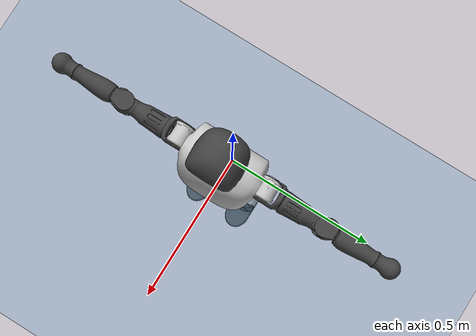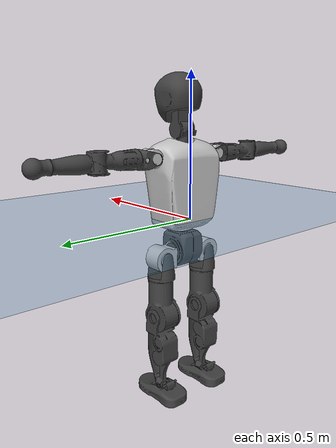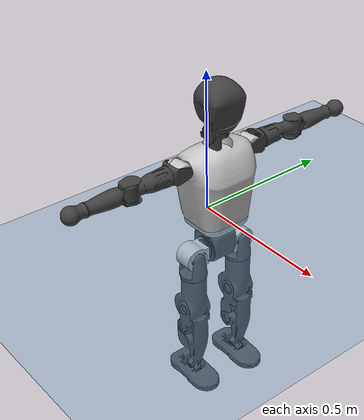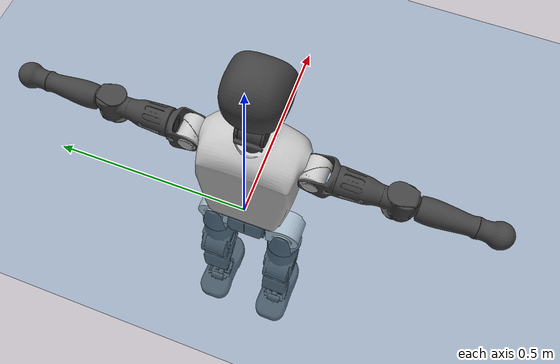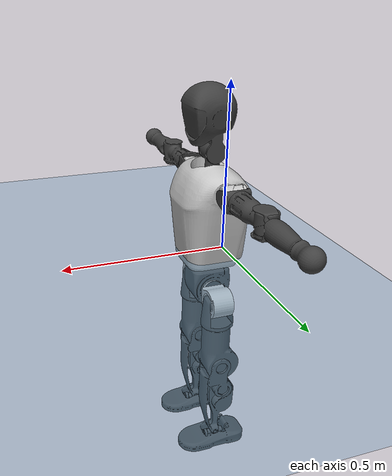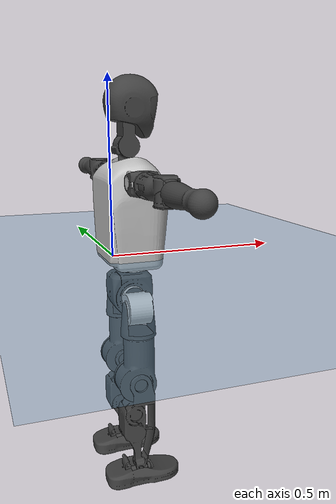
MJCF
<mujoco model="T1">
  <compiler angle="radian" assetdir="assets" balanceinertia="true" inertiafromgeom="false"/>

  <option timestep="0.005" density="1.2" viscosity="2e-05"/>

  <size nkey="1"/>

  <visual>
    <quality shadowsize="8192"/>
    <map shadowclip="0.5"/>
  </visual>

  <default>
    <default class="/">
      <joint armature="0.01" damping="0.01" frictionloss="0.1"/>
      <geom contype="0" conaffinity="0" group="1" solref="-1000 -80"/>
      <site size="0.01 0.005 0.005" group="5"/>
      <general forcelimited="true" biastype="affine" gainprm="25" biasprm="0 -25 -0.6"/>
      <default class="t1">
        <geom rgba="0.25 0.25 0.25 1"/>
        <default class="visual">
          <geom type="mesh" group="2"/>
        </default>
        <default class="collision">
          <geom group="3"/>
        </default>
        <default class="foot">
          <geom size="0.1115 0.05 0.015" type="box" condim="6" group="4" priority="1" solimp="0.015 1 0.015"/>
        </default>
        <default class="reward_collision_sphere">
          <geom group="5" rgba="1 0 0 1"/>
        </default>
      </default>
    </default>
  </default>

  <asset>
    <texture type="skybox" colorspace="auto" name="//unnamed_texture_0" builtin="gradient" rgb1="0.95 0.95 0.95" rgb2="0.95 0.95 0.95" width="100" height="600"/>
    <texture type="2d" colorspace="auto" name="texplane" builtin="checker" rgb1="0.345 0.575 0.748" rgb2="0.345 0.575 0.748" markrgb="1 1 1" width="512" height="512"/>
    <material name="MatPlane" class="/" texture="texplane" texuniform="true" texrepeat="2 2" specular="0.9"/>
    <mesh name="Trunk" class="/" file="Trunk.stl"/>
    <mesh name="H1" class="/" file="H1.stl"/>
    <mesh name="H2" class="/" file="H2.stl"/>
    <mesh name="AL1" class="/" file="AL1.stl"/>
    <mesh name="AL2" class="/" file="AL2.stl"/>
    <mesh name="AL3" class="/" file="AL3.stl"/>
    <mesh name="left_hand_link" class="/" file="left_hand_link.stl"/>
    <mesh name="AR1" class="/" file="AR1.stl"/>
    <mesh name="AR2" class="/" file="AR2.stl"/>
    <mesh name="AR3" class="/" file="AR3.stl"/>
    <mesh name="right_hand_link" class="/" file="right_hand_link.stl"/>
    <mesh name="Waist" class="/" file="Waist.stl"/>
    <mesh name="Hip_Pitch_Left" class="/" file="Hip_Pitch_Left.stl"/>
    <mesh name="Hip_Roll_Left" class="/" file="Hip_Roll_Left.stl"/>
    <mesh name="Hip_Yaw_Left" class="/" file="Hip_Yaw_Left.stl"/>
    <mesh name="Shank_Left" class="/" file="Shank_Left.stl"/>
    <mesh name="Ankle_Cross_Left" class="/" file="Ankle_Cross_Left.stl"/>
    <mesh name="left_foot_link" class="/" file="left_foot_link.stl"/>
    <mesh name="Hip_Pitch_Right" class="/" file="Hip_Pitch_Right.stl"/>
    <mesh name="Hip_Roll_Right" class="/" file="Hip_Roll_Right.stl"/>
    <mesh name="Hip_Yaw_Right" class="/" file="Hip_Yaw_Right.stl"/>
    <mesh name="Shank_Right" class="/" file="Shank_Right.stl"/>
    <mesh name="Ankle_Cross_Right" class="/" file="Ankle_Cross_Right.stl"/>
    <mesh name="right_foot_link" class="/" file="right_foot_link.stl"/>
  </asset>

  <worldbody>
    <geom name="floor" class="/" size="100 100 0.125" type="plane" group="0" material="MatPlane"/>
    <light name="toplight_shadow" class="/" pos="0 0 5" dir="0.0990148 0.0990148 -0.990148" type="directional" ambient="0.04 0.04 0.04" diffuse="0.55 0.55 0.55" specular="0.12 0.12 0.12"/>
    <light name="toplight_fill" class="/" pos="0 0 5" dir="0.0990148 0.0990148 -0.990148" type="directional" castshadow="false" ambient="0.04 0.04 0.04" diffuse="0.3 0.3 0.3" specular="0.08 0.08 0.08"/>
    <body name="trunk" childclass="t1" pos="-0.000504891 -0.00262069 0.00138968" quat="1 0.000257137 0.000410915 -0.000680698">
      <inertial pos="0.0401841 -0.000706522 0.106467" quat="0.999961 -0.00363912 -0.00722728 -0.003464" mass="7.80476" diaginertia="0.0192955 0.04994 0.057412"/>
      <joint name="//unnamed_joint_0" type="free" armature="0" damping="0" frictionloss="0"/>
      <geom name="//unnamed_geom_1" class="visual" rgba="0.76 0.76 0.76 1" mesh="Trunk"/>
      <geom name="//unnamed_geom_2" class="collision" size="0.0662495 0.0883327 0.132499" pos="0.0440018 0 0.120639" type="box"/>
      <geom name="//unnamed_geom_3" class="reward_collision_sphere" size="0.101583" pos="0.0440018 0 0.100532"/>
      <geom name="//unnamed_geom_4" class="reward_collision_sphere" size="0.0132499" pos="0.0440018 0.0774601 0"/>
      <geom name="//unnamed_geom_5" class="reward_collision_sphere" size="0.0132499" pos="0.0440018 -0.0774601 0"/>
      <geom name="//unnamed_geom_6" class="reward_collision_sphere" size="0.0132499" pos="0.0440018 0.0975086 0.180958"/>
      <geom name="//unnamed_geom_7" class="reward_collision_sphere" size="0.0132499" pos="0.0440018 -0.0975086 0.180958"/>
      <site name="imu" pos="-0.00978619 -0.0138043 0.0016842" size="0.00883327"/>
      <camera name="track" pos="0 -1.82259 0" quat="0.707107 0.707107 0 0" mode="trackcom"/>
      <camera name="ego_camera" pos="0.0894704 0 0.422236" quat="-0.5 -0.5 0.5 0.5"/>
      <body name="H1" pos="0.0454714 0.00083408 0.244926" quat="1 -9.71861e-05 -0.000368631 -0.000449691">
        <inertial pos="-0.000195923 -0.00126679 0.0594578" quat="0.758456 -0.0169754 0.0101536 0.651424" mass="0.302844" diaginertia="4.99463e-05 0.000142716 0.000148923"/>
        <joint name="AAHead_yaw" pos="0 0 0" axis="-0.000377564 -0.0134239 0.99991" range="-1.61128 1.54828" armature="0.00952067" damping="0.00853662" frictionloss="0.0781503"/>
        <geom name="//unnamed_geom_8" class="visual" mesh="H1"/>
        <body name="H2" pos="0.0021095 0.000960991 0.0626736" quat="1 -0.000187672 -0.000177525 -0.000218405">
          <inertial pos="0.00500423 -0.00175289 0.0992078" quat="0.989062 0.102535 -0.0753395 -0.0746148" mass="0.421379" diaginertia="0.000418701 0.00113497 0.00170304"/>
          <joint name="Head_pitch" pos="0 0 0" axis="0.000842027 -0.999912 0.0132596" range="-1.20023 0.37365" armature="0.00836331" damping="0.00991059" frictionloss="0.0873903"/>
          <geom name="//unnamed_geom_9" class="visual" mesh="H2"/>
          <geom name="//unnamed_geom_10" class="collision" size="0.0706662" pos="0.00733364 0 0.110586"/>
          <geom name="//unnamed_geom_11" class="reward_collision_sphere" size="0.0794994" pos="0.0146673 0 0.100532"/>
        </body>
      </body>
      <body name="AL1" pos="0.0433562 0.0968348 0.219299" quat="1 -0.000223508 0.00048931 -0.000136917">
        <inertial pos="-0.00142761 0.0401142 -0.00265361" quat="0.494372 0.504188 -0.501997 0.499389" mass="0.376461" diaginertia="0.000296507 0.000840541 0.000313371"/>
        <joint name="Left_Shoulder_Pitch" pos="0 0 0" axis="-0.0130107 0.999895 -0.00635371" stiffness="0.00392798" range="-3.3119 1.21255" armature="0.00918002" damping="0.0143758" frictionloss="0.0841104"/>
        <geom name="//unnamed_geom_12" class="visual" rgba="0.76 0.76 0.76 1" mesh="AL1"/>
        <body name="AL2" pos="0.00219393 0.0416258 -0.00260902" quat="1 0.000949791 0.000158406 0.000213889">
          <inertial pos="0.00248107 0.0320655 -0.000222714" quat="0.487754 0.512275 -0.48848 0.510937" mass="0.108018" diaginertia="8.55208e-05 0.000211368 0.000178092"/>
          <joint name="Left_Shoulder_Roll" pos="0 0 0" axis="-0.999892 0.00717489 0.0128444" range="-1.51644 1.75138" armature="0.00863456" damping="0" frictionloss="0.100501"/>
          <geom name="//unnamed_geom_13" class="visual" mesh="AL2"/>
          <body name="AL3" pos="0.00304091 0.0579634 0.0019644" quat="0.999999 0.00119905 0.000116963 0.000178948">
            <inertial pos="-0.000204258 0.0750462 -0.000302304" quat="0.702659 0.711502 -0.00584972 0.000719254" mass="0.712492" diaginertia="0.00270546 0.00818691 0.000607435"/>
            <joint name="Left_Elbow_Pitch" pos="0 0 0" axis="0.0115678 -0.999914 0.00614195" range="-2.22449 2.21578" armature="0.0101045" damping="0" frictionloss="0.0993087"/>
            <geom name="//unnamed_geom_14" class="visual" mesh="AL3"/>
            <geom name="//unnamed_geom_15" class="collision" size="0.0264998 0.0662495" pos="0 0.0455647 0" quat="0.707105 0.707108 0 0" type="cylinder"/>
            <geom name="//unnamed_geom_16" class="reward_collision_sphere" size="0.0317998"/>
            <body name="left_hand_link" pos="0.00191039 0.134693 -0.00157912" quat="0.999999 -0.000893001 0.000590041 -3.95198e-05">
              <inertial pos="-0.000194555 0.10065 -0.00212652" quat="0.7093 0.704896 -0.00109986 0.00361448" mass="0.229972" diaginertia="0.00175329 0.00518186 0.000218289"/>
              <joint name="Left_Elbow_Yaw" pos="0 0 0" axis="0.0116546 0.00848966 0.999896" stiffness="0.00752182" range="-2.43979 0.0134602" armature="0.00910761" damping="0.0125713" frictionloss="0.0956731"/>
              <geom name="//unnamed_geom_17" class="visual" mesh="left_hand_link"/>
              <geom name="//unnamed_geom_18" class="collision" size="0.0264998 0.0772911" pos="0 0.118468 0" quat="0.707105 0.707108 0 0" type="cylinder"/>
              <geom name="//unnamed_geom_19" class="reward_collision_sphere" size="0.0441664"/>
              <geom name="//unnamed_geom_20" class="reward_collision_sphere" size="0.0309164" pos="0 0.100242 0"/>
              <geom name="//unnamed_geom_21" class="reward_collision_sphere" size="0.0309164" pos="0 0.195928 0"/>
            </body>
          </body>
        </body>
      </body>
      <body name="AR1" pos="0.04212 -0.0957334 0.220324" quat="1 0.000528729 0.000629576 -0.000222978">
        <inertial pos="-0.000302377 -0.0438627 0.00266041" quat="0.505338 0.496331 -0.502841 0.495419" mass="0.365435" diaginertia="0.000277261 0.000812252 0.000306117"/>
        <joint name="Right_Shoulder_Pitch" pos="0 0 0" axis="0.00231255 -0.999994 -0.00252585" range="-1.21476 3.30698" armature="0.00801722" damping="0.00491922" frictionloss="0.0838876"/>
        <geom name="//unnamed_geom_22" class="visual" rgba="0.76 0.76 0.76 1" mesh="AR1"/>
        <body name="AR2" pos="0.00072149 -0.0390413 -0.000807806" quat="1 -6.96502e-05 -1.85158e-05 0.0003134">
          <inertial pos="0.00360381 -0.0344792 -0.00249014" quat="0.50629 0.486318 -0.515115 0.491754" mass="0.111251" diaginertia="8.21068e-05 0.000208138 0.000173857"/>
          <joint name="Right_Shoulder_Roll" pos="0 0 0" axis="-0.999964 -0.00443286 0.0072901" stiffness="0.0112798" range="-1.72894 1.62646" armature="0.00868305" damping="0" frictionloss="0.0871811"/>
          <geom name="//unnamed_geom_23" class="visual" mesh="AR2"/>
          <body name="AR3" pos="0.00198956 -0.0548601 -0.00234981" quat="1 0.00025485 0.000341034 -0.00033758">
            <inertial pos="-0.000225939 -0.0792867 0.00099501" quat="0.707701 0.706512 0.000180434 -0.000138797" mass="0.700744" diaginertia="0.00273135 0.00827329 0.000649232"/>
            <joint name="Right_Elbow_Pitch" pos="0 0 0" axis="-4.85178e-05 1 0.000226877" range="-2.26368 2.27564" armature="0.0100307" damping="0.00769988" frictionloss="0.0761326"/>
            <geom name="//unnamed_geom_24" class="visual" mesh="AR3"/>
            <geom name="//unnamed_geom_25" class="collision" size="0.0264998 0.0662495" pos="0 -0.0455647 0" quat="0.707105 0.707108 0 0" type="cylinder"/>
            <geom name="//unnamed_geom_26" class="reward_collision_sphere" size="0.0317998"/>
            <body name="right_hand_link" pos="5.46122e-05 -0.134631 0.000215796" quat="1 -0.000883345 -0.000288921 -0.000359101">
              <inertial pos="0.000513035 -0.0996321 -0.00185959" quat="0.714992 0.699116 0.00333587 -0.00333825" mass="0.231031" diaginertia="0.00166437 0.00510792 0.000224659"/>
              <joint name="Right_Elbow_Yaw" pos="0 0 0" axis="-0.00443596 0.0019757 0.999988" range="-0.0558142 2.49033" armature="0.00916745" damping="0.00911355" frictionloss="0.085742"/>
              <geom name="//unnamed_geom_27" class="visual" mesh="right_hand_link"/>
              <geom name="//unnamed_geom_28" class="collision" size="0.0264998 0.0772911" pos="0 -0.118468 0" quat="0.707105 0.707108 0 0" type="cylinder"/>
              <geom name="//unnamed_geom_29" class="reward_collision_sphere" size="0.0441664"/>
              <geom name="//unnamed_geom_30" class="reward_collision_sphere" size="0.0309164" pos="0 -0.100242 0"/>
              <geom name="//unnamed_geom_31" class="reward_collision_sphere" size="0.0309164" pos="0 -0.195928 0"/>
            </body>
          </body>
        </body>
      </body>
      <body name="Waist" pos="0.0473275 -0.000543444 -0.116944" quat="1 -0.000373686 -2.79394e-05 0.000133574">
        <inertial pos="0.000282352 9.10069e-05 0.00882571" quat="0.984147 0.00235578 -0.177313 -0.00318032" mass="1.73386" diaginertia="0.00109976 0.00334755 0.00486996"/>
        <joint name="Waist" pos="0 0 0" axis="0.00507371 -0.0146083 0.99988" range="-1.5677 1.57513" armature="0.0089324" damping="0.024073" frictionloss="0.0763708"/>
        <geom name="//unnamed_geom_32" class="visual" mesh="Waist"/>
        <body name="Hip_Pitch_Left" pos="0.00332086 0.0985743 -0.000688602" quat="1 -3.85105e-05 -0.000158828 0.000148396">
          <inertial pos="0.00316007 -0.00596089 -0.0210653" quat="0.972759 0.231031 0.0182278 -0.00567703" mass="0.725639" diaginertia="0.000384454 0.000926097 0.00129703"/>
          <joint name="Left_Hip_Pitch" pos="0 0 0" axis="-0.00304661 0.999982 0.00511054" range="-1.80101 1.62702" armature="0.00906622" damping="0" frictionloss="0.0931156"/>
          <geom name="//unnamed_geom_33" class="visual" rgba="0.76 0.76 0.76 1" mesh="Hip_Pitch_Left"/>
          <body name="Hip_Roll_Left" pos="0.00236945 -0.000997396 -0.0178954" quat="1 0.000104704 -0.000260746 -6.70437e-05">
            <inertial pos="-0.000987978 0.0026462 -0.0545114" quat="0.710699 -0.00257652 0.00386509 0.703481" mass="0.256566" diaginertia="0.00037087 0.000896496 0.000513993"/>
            <joint name="Left_Hip_Roll" pos="0 0 0" axis="-1 -0.000132808 -4.88941e-05" range="-1.58107 0.217197" armature="0.0088429" damping="0.00698912" frictionloss="0.0781043"/>
            <geom name="//unnamed_geom_34" class="visual" mesh="Hip_Roll_Left"/>
            <geom name="//unnamed_geom_35" class="reward_collision_sphere" size="0.048583"/>
            <body name="Hip_Yaw_Left" pos="-0.00024554 0.00170461 -0.0806499" quat="1 -0.000286895 -0.0001608 -9.03654e-05">
              <inertial pos="-0.00457887 -0.000693632 -0.0889427" quat="0.68751 -0.0316732 -0.0347409 0.724652" mass="1.42349" diaginertia="0.00538615 0.0154625 0.00261992"/>
              <joint name="Left_Hip_Yaw" pos="0 0 0" axis="0.0116415 0.00527949 -0.999918" range="-0.984695 0.956252" armature="0.00900116" damping="0.00805839" frictionloss="0.0907623"/>
              <geom name="//unnamed_geom_36" class="visual" mesh="Hip_Yaw_Left"/>
              <geom name="//unnamed_geom_37" class="collision" size="0.0441664 0.0706662" type="cylinder"/>
              <body name="Shank_Left" pos="-0.00670081 0.00217138 -0.138124" quat="1 -0.000401683 -0.0004022 -0.000107459">
                <inertial pos="-0.00541483 -0.00242321 -0.125252" quat="0.997292 0.00407124 -0.0254879 0.0688696" mass="1.1934" diaginertia="0.00758822 0.0216797 0.00196874"/>
                <joint name="Left_Knee_Pitch" pos="0 0 0" axis="-0.00648977 0.999967 0.00483454" range="0.024832 2.34248" armature="0.00876024" damping="0.0181444" frictionloss="0.0984725"/>
                <geom name="//unnamed_geom_38" class="visual" mesh="Shank_Left"/>
                <geom name="//unnamed_geom_39" class="collision" size="0.0441664 0.0662495" pos="0 0 -0.120639" type="cylinder"/>
                <geom name="//unnamed_geom_40" class="reward_collision_sphere" size="0.0574163"/>
                <body name="Ankle_Cross_Left" pos="-0.000305877 -0.00151115 -0.283956" quat="1 7.84983e-05 -3.48542e-05 0.000143977">
                  <inertial pos="-0.00258108 0.000147867 -0.00637583" quat="0.447517 0.549256 0.548594 0.443949" mass="0.0474637" diaginertia="6.16167e-06 1.51445e-05 1.14254e-05"/>
                  <joint name="Left_Ankle_Pitch" pos="0 0 0" axis="-0.00929455 0.999887 -0.0118081" range="-0.874195 0.365635" armature="0.00876778" damping="0.00420163" frictionloss="0.0838081"/>
                  <geom name="//unnamed_geom_41" class="visual" mesh="Ankle_Cross_Left"/>
                  <body name="left_foot_link" pos="0.000547233 0.00129596 -0.0120604" quat="0.999999 -0.00124108 0.000421544 -0.000306907">
                    <inertial pos="0.00268952 0.000827119 -0.0094902" quat="-0.00788605 0.614811 0.00757559 0.788598" mass="0.480546" diaginertia="0.000579093 0.00151971 0.00220097"/>
                    <joint name="Left_Ankle_Roll" pos="0 0 0" axis="-0.999999 0.000931172 -0.00112134" range="-0.448891 0.411583" armature="0.00886945" damping="0" frictionloss="0.0890603"/>
                    <geom name="//unnamed_geom_42" class="visual" mesh="left_foot_link"/>
                    <geom name="left_foot" class="foot" size="0.108663 0.0406579 0.0121287" pos="0.00733364 0 -0.0150798"/>
                    <geom name="//unnamed_geom_44" class="reward_collision_sphere" size="0.045933" pos="0.00733364 0 -0.0150798"/>
                    <geom name="//unnamed_geom_45" class="reward_collision_sphere" size="0.0264998" pos="0.0696695 -0.0209598 -0.0150798"/>
                    <geom name="//unnamed_geom_46" class="reward_collision_sphere" size="0.0264998" pos="-0.0513355 -0.0209598 -0.0150798"/>
                    <site name="left_foot" class="foot" pos="0.00733364 0 -0.0150798" size="0.00883327"/>
                  </body>
                </body>
              </body>
            </body>
          </body>
        </body>
        <body name="Hip_Pitch_Right" pos="-0.00322835 -0.097612 0.000713226" quat="0.999999 0.00133873 -0.000480141 0.00020287">
          <inertial pos="-0.00128388 0.00742277 -0.0152987" quat="0.973409 -0.228573 0.0144865 -0.00433148" mass="0.72353" diaginertia="0.000388961 0.000937774 0.00133442"/>
          <joint name="Right_Hip_Pitch" pos="0 0 0" axis="0.00128663 -0.999998 0.0018183" range="-1.57135 1.81086" armature="0.00897019" damping="0" frictionloss="0.0988154"/>
          <geom name="//unnamed_geom_47" class="visual" rgba="0.76 0.76 0.76 1" mesh="Hip_Pitch_Right"/>
          <body name="Hip_Roll_Right" pos="0.0024272 0.00113476 -0.0209" quat="1 -6.32223e-05 0.000335978 -0.000104904">
            <inertial pos="-0.0016907 -0.00166257 -0.0565036" quat="0.710692 -0.00332166 -0.00859614 0.703443" mass="0.273309" diaginertia="0.000365446 0.000948579 0.000523286"/>
            <joint name="Right_Hip_Roll" pos="0 0 0" axis="-0.999977 0.00607808 0.0028666" range="-0.237469 1.59315" armature="0.00948003" damping="0.00345423" frictionloss="0.0824868"/>
            <geom name="//unnamed_geom_48" class="visual" mesh="Hip_Roll_Right"/>
            <geom name="//unnamed_geom_49" class="reward_collision_sphere" size="0.048583"/>
            <body name="Hip_Yaw_Right" pos="-0.00116523 0.000597944 -0.0822704" quat="1 -0.000116685 0.000121018 2.41482e-05">
              <inertial pos="-0.00506265 -0.00319081 -0.0871641" quat="0.714777 -0.0289076 -0.0290261 0.698151" mass="1.54221" diaginertia="0.00545283 0.0169111 0.00265781"/>
              <joint name="Right_Hip_Yaw" pos="0 0 0" axis="0.000221242 0.0017911 -0.999998" stiffness="0.0106725" range="-0.97707 0.999529" armature="0.00766047" damping="0" frictionloss="0.0930366"/>
              <geom name="//unnamed_geom_50" class="visual" mesh="Hip_Yaw_Right"/>
              <geom name="//unnamed_geom_51" class="collision" size="0.0441664 0.0706662" type="cylinder"/>
              <body name="Shank_Right" pos="-0.00751538 9.25452e-05 -0.135634" quat="1 0.00012912 -0.000139744 -0.000121751">
                <inertial pos="-0.00170512 0.00200994 -0.123427" quat="0.99878 0.0030519 -0.0336175 -0.0360438" mass="1.27536" diaginertia="0.00792578 0.0226426 0.00204386"/>
                <joint name="Right_Knee_Pitch" pos="0 0 0" axis="0.000548018 -0.999982 0.00601177" range="-2.34346 -0.00620161" armature="0.00853656" damping="0.00294256" frictionloss="0.0929261"/>
                <geom name="//unnamed_geom_52" class="visual" mesh="Shank_Right"/>
                <geom name="//unnamed_geom_53" class="collision" size="0.0441664 0.0662495" pos="0 0 -0.120639" type="cylinder"/>
                <geom name="//unnamed_geom_54" class="reward_collision_sphere" size="0.0574163"/>
                <body name="Ankle_Cross_Right" pos="0.00225288 -0.000599739 -0.281545" quat="1 0.000149032 0.000226165 9.99784e-05">
                  <inertial pos="-0.00290144 0.00184315 -0.00792921" quat="0.442992 0.551871 0.546667 0.447608" mass="0.0487165" diaginertia="6.33781e-06 1.61859e-05 1.14019e-05"/>
                  <joint name="Right_Ankle_Pitch" pos="0 0 0" axis="0.00113377 -0.99991 0.0133449" range="-0.34961 0.872764" armature="0.00850884" damping="0.00235915" frictionloss="0.086657"/>
                  <geom name="//unnamed_geom_55" class="visual" mesh="Ankle_Cross_Right"/>
                  <body name="right_foot_link" pos="0.000543945 -0.0037908 -0.00945852" quat="1 9.37514e-06 -7.70282e-05 -0.000130096">
                    <inertial pos="0.00259613 -0.00039496 -0.00710971" quat="0.00921645 0.615102 0.00474876 0.78838" mass="0.470531" diaginertia="0.000590807 0.00150461 0.00221824"/>
                    <joint name="Right_Ankle_Roll" pos="0 0 0" axis="-0.999894 0.0093821 -0.0111171" stiffness="0.000353192" range="-0.435713 0.43524" armature="0.00892156" damping="0.0060154" frictionloss="0.076273"/>
                    <geom name="//unnamed_geom_56" class="visual" mesh="right_foot_link"/>
                    <geom name="right_foot" class="foot" size="0.102427 0.0404127 0.0123268" pos="0.00733364 0 -0.0150798"/>
                    <geom name="//unnamed_geom_58" class="reward_collision_sphere" size="0.0353331"/>
                    <geom name="//unnamed_geom_59" class="reward_collision_sphere" size="0.0264998" pos="0.00733364 0 -0.0150798"/>
                    <geom name="//unnamed_geom_60" class="reward_collision_sphere" size="0.0264998" pos="0.0696695 0.0209598 -0.0150798"/>
                    <geom name="//unnamed_geom_61" class="reward_collision_sphere" size="0.0264998" pos="-0.0513355 0.0209598 -0.0150798"/>
                    <site name="right_foot" class="foot" pos="0.00733364 0 -0.0150798" size="0.00883327"/>
                  </body>
                </body>
              </body>
            </body>
          </body>
        </body>
      </body>
    </body>
  </worldbody>

  <contact>
    <pair class="/" geom1="floor" geom2="left_foot" name="//unnamed_contact_0"/>
    <pair class="/" geom1="floor" geom2="right_foot" name="//unnamed_contact_1"/>
  </contact>

  <actuator>
    <general name="AAHead_yaw" class="/" joint="AAHead_yaw" forcerange="-5.54461 5.54461" gainprm="22.3819" biasprm="0 -22.3819 -0.500897"/>
    <general name="Head_pitch" class="/" joint="Head_pitch" forcerange="-6.22417 6.22417" gainprm="22.3819" biasprm="0 -22.3819 -0.500897"/>
    <general name="Left_Shoulder_Pitch" class="/" joint="Left_Shoulder_Pitch" forcerange="-16.1139 16.1139" gainprm="22.3819" biasprm="0 -22.3819 -0.500897"/>
    <general name="Left_Shoulder_Roll" class="/" joint="Left_Shoulder_Roll" forcerange="-15.9066 15.9066" gainprm="22.3819" biasprm="0 -22.3819 -0.500897"/>
    <general name="Left_Elbow_Pitch" class="/" joint="Left_Elbow_Pitch" forcerange="-17.4859 17.4859" gainprm="22.3819" biasprm="0 -22.3819 -0.500897"/>
    <general name="Left_Elbow_Yaw" class="/" joint="Left_Elbow_Yaw" forcerange="-17.5036 17.5036" gainprm="22.3819" biasprm="0 -22.3819 -0.500897"/>
    <general name="Right_Shoulder_Pitch" class="/" joint="Right_Shoulder_Pitch" forcerange="-15.8799 15.8799" gainprm="22.3819" biasprm="0 -22.3819 -0.500897"/>
    <general name="Right_Shoulder_Roll" class="/" joint="Right_Shoulder_Roll" forcerange="-17.4496 17.4496" gainprm="22.3819" biasprm="0 -22.3819 -0.500897"/>
    <general name="Right_Elbow_Pitch" class="/" joint="Right_Elbow_Pitch" forcerange="-17.0707 17.0707" gainprm="22.3819" biasprm="0 -22.3819 -0.500897"/>
    <general name="Right_Elbow_Yaw" class="/" joint="Right_Elbow_Yaw" forcerange="-14.3308 14.3308" gainprm="22.3819" biasprm="0 -22.3819 -0.500897"/>
    <general name="Waist" class="/" joint="Waist" forcerange="-26.6264 26.6264" gainprm="22.3819" biasprm="0 -22.3819 -0.500897"/>
    <general name="Left_Hip_Pitch" class="/" joint="Left_Hip_Pitch" forcerange="-42.2865 42.2865" gainprm="22.3819" biasprm="0 -22.3819 -0.500897"/>
    <general name="Left_Hip_Roll" class="/" joint="Left_Hip_Roll" forcerange="-27.4578 27.4578" gainprm="22.3819" biasprm="0 -22.3819 -0.500897"/>
    <general name="Left_Hip_Yaw" class="/" joint="Left_Hip_Yaw" forcerange="-26.2867 26.2867" gainprm="22.3819" biasprm="0 -22.3819 -0.500897"/>
    <general name="Left_Knee_Pitch" class="/" joint="Left_Knee_Pitch" forcerange="-52.7011 52.7011" gainprm="22.3819" biasprm="0 -22.3819 -0.500897"/>
    <general name="Left_Ankle_Pitch" class="/" joint="Left_Ankle_Pitch" forcerange="-17.2193 17.2193" gainprm="22.3819" biasprm="0 -22.3819 -0.500897"/>
    <general name="Left_Ankle_Roll" class="/" joint="Left_Ankle_Roll" forcerange="-13.2032 13.2032" gainprm="22.3819" biasprm="0 -22.3819 -0.500897"/>
    <general name="Right_Hip_Pitch" class="/" joint="Right_Hip_Pitch" forcerange="-39.8283 39.8283" gainprm="22.3819" biasprm="0 -22.3819 -0.500897"/>
    <general name="Right_Hip_Roll" class="/" joint="Right_Hip_Roll" forcerange="-26.3161 26.3161" gainprm="22.3819" biasprm="0 -22.3819 -0.500897"/>
    <general name="Right_Hip_Yaw" class="/" joint="Right_Hip_Yaw" forcerange="-26.8021 26.8021" gainprm="22.3819" biasprm="0 -22.3819 -0.500897"/>
    <general name="Right_Knee_Pitch" class="/" joint="Right_Knee_Pitch" forcerange="-50.4743 50.4743" gainprm="22.3819" biasprm="0 -22.3819 -0.500897"/>
    <general name="Right_Ankle_Pitch" class="/" joint="Right_Ankle_Pitch" forcerange="-16.0106 16.0106" gainprm="22.3819" biasprm="0 -22.3819 -0.500897"/>
    <general name="Right_Ankle_Roll" class="/" joint="Right_Ankle_Roll" forcerange="-14.1393 14.1393" gainprm="22.3819" biasprm="0 -22.3819 -0.500897"/>
  </actuator>

  <sensor>
    <gyro site="imu" name="imu_angular_velocity"/>
    <velocimeter site="imu" name="imu_linear_velocity"/>
    <framelinvel objtype="site" objname="left_foot" name="left_foot_global_linear_velocity"/>
    <framelinvel objtype="site" objname="right_foot" name="right_foot_global_linear_velocity"/>
  </sensor>

  <keyframe>
    <key name="home" qpos="0 0 0.6385 1 0 0 0 0 0 0 1.4 0 -0.4 0 -1.4 0 0.4 0 -0.4 0 0 0.8 -0.4 0 0.4 0 0 -0.8 0.4 0"/>
  </keyframe>
</mujoco>
